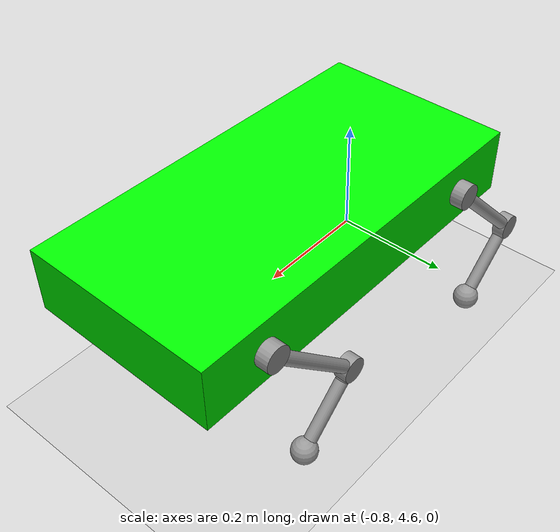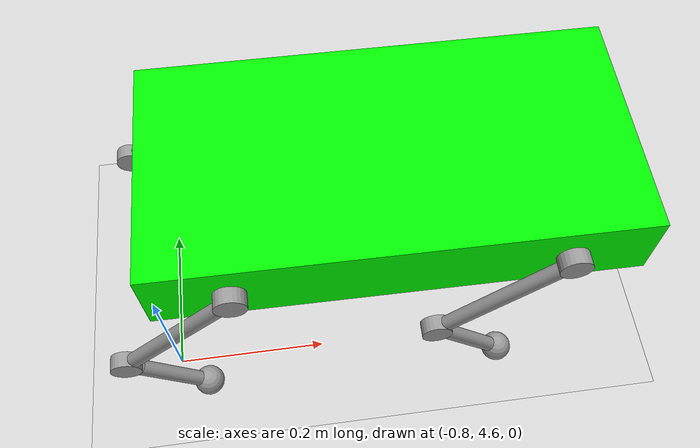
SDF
<sdf version="1.6">
 <world name="default">
  <model name="ground_plane">
   <static>1</static>
   <link name="link">
    <collision name="collision">
     <geometry><plane><normal>0 0 1</normal><size>100 100</size></plane></geometry>
     <surface><friction><ode><mu>100</mu><mu2>50</mu2></ode></friction></surface>
    </collision>
    <visual name="visual">
     <cast_shadows>0</cast_shadows>
     <geometry><plane><normal>0 0 1</normal><size>100 100</size></plane></geometry>
     <material>
      <script><uri>file://media/materials/scripts/gazebo.material</uri><name>Gazebo/Grey</name></script>
     </material>
    </visual>
   </link>
  </model>
  <model name="robodoggi_0">
   <link name="link_0">
    <pose>3.29895 2.116 0.505494 0 -0 0</pose>
    <inertial>
     <mass>1</mass>
     <inertia>
      <ixx>0.166667</ixx>
      <ixy>0</ixy>
      <ixz>0</ixz>
      <iyy>0.166667</iyy>
      <iyz>0</iyz>
      <izz>0.166667</izz>
     </inertia>
    </inertial>
    <visual name="visual">
     <geometry><box><size>0.6 0.3 0.1</size></box></geometry>
     <material>
      <lighting>1</lighting>
      <script><uri>file://media/materials/scripts/gazebo.material</uri><name>Gazebo/Grey</name></script>
      <shader type="pixel"><normal_map>__default__</normal_map></shader>
      <ambient>0 1 0 1</ambient>
      <diffuse>0.7 0.7 0.7 1</diffuse>
      <specular>0.01 0.01 0.01 1</specular>
      <emissive>0 0 0 1</emissive>
     </material>
    </visual>
    <collision name="collision">
     <geometry><box><size>0.6 0.3 0.1</size></box></geometry>
     <surface>
      <friction>
       <ode><mu>1</mu><mu2>1</mu2><fdir1>0 0 0</fdir1><slip1>0</slip1><slip2>0</slip2></ode>
       <torsional>
        <coefficient>1</coefficient>
        <patch_radius>0</patch_radius>
        <surface_radius>0</surface_radius>
        <use_patch_radius>1</use_patch_radius>
        <ode><slip>0</slip></ode>
       </torsional>
      </friction>
      <bounce><restitution_coefficient>0</restitution_coefficient><threshold>1e+06</threshold></bounce>
      <contact>
       <collide_without_contact>0</collide_without_contact>
       <collide_without_contact_bitmask>1</collide_without_contact_bitmask>
       <collide_bitmask>1</collide_bitmask>
       <ode>
        <soft_cfm>0</soft_cfm>
        <soft_erp>0.2</soft_erp>
        <kp>1e+13</kp>
        <kd>1</kd>
        <max_vel>0.01</max_vel>
        <min_depth>0</min_depth>
       </ode>
       <bullet>
        <split_impulse>1</split_impulse>
        <split_impulse_penetration_threshold>-0.01</split_impulse_penetration_threshold>
        <soft_cfm>0</soft_cfm>
        <soft_erp>0.2</soft_erp>
        <kp>1e+13</kp>
        <kd>1</kd>
       </bullet>
      </contact>
     </surface>
    </collision>
   </link>
   <link name="link_1">
    <pose>3.09895 1.956 0.505494 1.5708 -0 0</pose>
    <inertial>
     <mass>1</mass>
     <inertia><ixx>0.145833</ixx><ixy>0</ixy><ixz>0</ixz><iyy>0.145833</iyy><iyz>0</iyz><izz>0.125</izz></inertia>
    </inertial>
    <visual name="visual">
     <geometry><cylinder><radius>0.02</radius><length>0.02</length></cylinder></geometry>
     <material>
      <lighting>1</lighting>
      <script><uri>file://media/materials/scripts/gazebo.material</uri><name>Gazebo/Grey</name></script>
      <shader type="pixel"><normal_map>__default__</normal_map></shader>
      <ambient>0.3 0.3 0.3 1</ambient>
      <diffuse>0.7 0.7 0.7 1</diffuse>
      <specular>0.01 0.01 0.01 1</specular>
      <emissive>0 0 0 1</emissive>
     </material>
    </visual>
    <collision name="collision">
     <geometry><cylinder><radius>0.02</radius><length>0.02</length></cylinder></geometry>
     <surface>
      <friction>
       <ode><mu>1</mu><mu2>1</mu2><fdir1>0 0 0</fdir1><slip1>0</slip1><slip2>0</slip2></ode>
       <torsional>
        <coefficient>1</coefficient>
        <patch_radius>0</patch_radius>
        <surface_radius>0</surface_radius>
        <use_patch_radius>1</use_patch_radius>
        <ode><slip>0</slip></ode>
       </torsional>
      </friction>
      <bounce><restitution_coefficient>0</restitution_coefficient><threshold>1e+06</threshold></bounce>
      <contact>
       <collide_without_contact>0</collide_without_contact>
       <collide_without_contact_bitmask>1</collide_without_contact_bitmask>
       <collide_bitmask>1</collide_bitmask>
       <ode>
        <soft_cfm>0</soft_cfm>
        <soft_erp>0.2</soft_erp>
        <kp>1e+13</kp>
        <kd>1</kd>
        <max_vel>0.01</max_vel>
        <min_depth>0</min_depth>
       </ode>
       <bullet>
        <split_impulse>1</split_impulse>
        <split_impulse_penetration_threshold>-0.01</split_impulse_penetration_threshold>
        <soft_cfm>0</soft_cfm>
        <soft_erp>0.2</soft_erp>
        <kp>1e+13</kp>
        <kd>1</kd>
       </bullet>
      </contact>
     </surface>
    </collision>
   </link>
   <link name="link_1_clone">
    <pose>2.94624 1.956 0.352783 1.5708 -0 0</pose>
    <inertial>
     <mass>1</mass>
     <inertia><ixx>0.145833</ixx><ixy>0</ixy><ixz>0</ixz><iyy>0.145833</iyy><iyz>0</iyz><izz>0.125</izz></inertia>
    </inertial>
    <visual name="visual">
     <geometry><cylinder><radius>0.02</radius><length>0.02</length></cylinder></geometry>
     <material>
      <lighting>1</lighting>
      <script><uri>file://media/materials/scripts/gazebo.material</uri><name>Gazebo/Grey</name></script>
      <shader type="pixel"><normal_map>__default__</normal_map></shader>
      <ambient>0.3 0.3 0.3 1</ambient>
      <diffuse>0.7 0.7 0.7 1</diffuse>
      <specular>0.01 0.01 0.01 1</specular>
      <emissive>0 0 0 1</emissive>
     </material>
    </visual>
    <collision name="collision">
     <geometry><cylinder><radius>0.02</radius><length>0.02</length></cylinder></geometry>
     <surface>
      <friction>
       <ode><mu>1</mu><mu2>1</mu2><fdir1>0 0 0</fdir1><slip1>0</slip1><slip2>0</slip2></ode>
       <torsional>
        <coefficient>1</coefficient>
        <patch_radius>0</patch_radius>
        <surface_radius>0</surface_radius>
        <use_patch_radius>1</use_patch_radius>
        <ode><slip>0</slip></ode>
       </torsional>
      </friction>
      <bounce><restitution_coefficient>0</restitution_coefficient><threshold>1e+06</threshold></bounce>
      <contact>
       <collide_without_contact>0</collide_without_contact>
       <collide_without_contact_bitmask>1</collide_without_contact_bitmask>
       <collide_bitmask>1</collide_bitmask>
       <ode>
        <soft_cfm>0</soft_cfm>
        <soft_erp>0.2</soft_erp>
        <kp>1e+13</kp>
        <kd>1</kd>
        <max_vel>0.01</max_vel>
        <min_depth>0</min_depth>
       </ode>
       <bullet>
        <split_impulse>1</split_impulse>
        <split_impulse_penetration_threshold>-0.01</split_impulse_penetration_threshold>
        <soft_cfm>0</soft_cfm>
        <soft_erp>0.2</soft_erp>
        <kp>1e+13</kp>
        <kd>1</kd>
       </bullet>
      </contact>
     </surface>
    </collision>
   </link>
   <link name="link_1_clone_0">
    <pose>3.49895 1.956 0.505494 1.5708 -0 0</pose>
    <inertial>
     <mass>1</mass>
     <inertia><ixx>0.145833</ixx><ixy>0</ixy><ixz>0</ixz><iyy>0.145833</iyy><iyz>0</iyz><izz>0.125</izz></inertia>
    </inertial>
    <visual name="visual">
     <geometry><cylinder><radius>0.02</radius><length>0.02</length></cylinder></geometry>
     <material>
      <lighting>1</lighting>
      <script><uri>file://media/materials/scripts/gazebo.material</uri><name>Gazebo/Grey</name></script>
      <shader type="pixel"><normal_map>__default__</normal_map></shader>
      <ambient>0.3 0.3 0.3 1</ambient>
      <diffuse>0.7 0.7 0.7 1</diffuse>
      <specular>0.01 0.01 0.01 1</specular>
      <emissive>0 0 0 1</emissive>
     </material>
    </visual>
    <collision name="collision">
     <geometry><cylinder><radius>0.02</radius><length>0.02</length></cylinder></geometry>
     <surface>
      <friction>
       <ode><mu>1</mu><mu2>1</mu2><fdir1>0 0 0</fdir1><slip1>0</slip1><slip2>0</slip2></ode>
       <torsional>
        <coefficient>1</coefficient>
        <patch_radius>0</patch_radius>
        <surface_radius>0</surface_radius>
        <use_patch_radius>1</use_patch_radius>
        <ode><slip>0</slip></ode>
       </torsional>
      </friction>
      <bounce><restitution_coefficient>0</restitution_coefficient><threshold>1e+06</threshold></bounce>
      <contact>
       <collide_without_contact>0</collide_without_contact>
       <collide_without_contact_bitmask>1</collide_without_contact_bitmask>
       <collide_bitmask>1</collide_bitmask>
       <ode>
        <soft_cfm>0</soft_cfm>
        <soft_erp>0.2</soft_erp>
        <kp>1e+13</kp>
        <kd>1</kd>
        <max_vel>0.01</max_vel>
        <min_depth>0</min_depth>
       </ode>
       <bullet>
        <split_impulse>1</split_impulse>
        <split_impulse_penetration_threshold>-0.01</split_impulse_penetration_threshold>
        <soft_cfm>0</soft_cfm>
        <soft_erp>0.2</soft_erp>
        <kp>1e+13</kp>
        <kd>1</kd>
       </bullet>
      </contact>
     </surface>
    </collision>
   </link>
   <link name="link_1_clone_0_clone">
    <pose>3.49895 2.27601 0.505494 1.5708 -0 0</pose>
    <inertial>
     <mass>1</mass>
     <inertia><ixx>0.145833</ixx><ixy>0</ixy><ixz>0</ixz><iyy>0.145833</iyy><iyz>0</iyz><izz>0.125</izz></inertia>
    </inertial>
    <visual name="visual">
     <geometry><cylinder><radius>0.02</radius><length>0.02</length></cylinder></geometry>
     <material>
      <lighting>1</lighting>
      <script><uri>file://media/materials/scripts/gazebo.material</uri><name>Gazebo/Grey</name></script>
      <shader type="pixel"><normal_map>__default__</normal_map></shader>
      <ambient>0.3 0.3 0.3 1</ambient>
      <diffuse>0.7 0.7 0.7 1</diffuse>
      <specular>0.01 0.01 0.01 1</specular>
      <emissive>0 0 0 1</emissive>
     </material>
    </visual>
    <collision name="collision">
     <geometry><cylinder><radius>0.02</radius><length>0.02</length></cylinder></geometry>
     <surface>
      <friction>
       <ode><mu>1</mu><mu2>1</mu2><fdir1>0 0 0</fdir1><slip1>0</slip1><slip2>0</slip2></ode>
       <torsional>
        <coefficient>1</coefficient>
        <patch_radius>0</patch_radius>
        <surface_radius>0</surface_radius>
        <use_patch_radius>1</use_patch_radius>
        <ode><slip>0</slip></ode>
       </torsional>
      </friction>
      <bounce><restitution_coefficient>0</restitution_coefficient><threshold>1e+06</threshold></bounce>
      <contact>
       <collide_without_contact>0</collide_without_contact>
       <collide_without_contact_bitmask>1</collide_without_contact_bitmask>
       <collide_bitmask>1</collide_bitmask>
       <ode>
        <soft_cfm>0</soft_cfm>
        <soft_erp>0.2</soft_erp>
        <kp>1e+13</kp>
        <kd>1</kd>
        <max_vel>0.01</max_vel>
        <min_depth>0</min_depth>
       </ode>
       <bullet>
        <split_impulse>1</split_impulse>
        <split_impulse_penetration_threshold>-0.01</split_impulse_penetration_threshold>
        <soft_cfm>0</soft_cfm>
        <soft_erp>0.2</soft_erp>
        <kp>1e+13</kp>
        <kd>1</kd>
       </bullet>
      </contact>
     </surface>
    </collision>
   </link>
   <link name="link_1_clone_0_clone_clone">
    <pose>3.34824 2.27601 0.354783 1.5708 -0 0</pose>
    <inertial>
     <mass>1</mass>
     <inertia><ixx>0.145833</ixx><ixy>0</ixy><ixz>0</ixz><iyy>0.145833</iyy><iyz>0</iyz><izz>0.125</izz></inertia>
    </inertial>
    <visual name="visual">
     <geometry><cylinder><radius>0.02</radius><length>0.02</length></cylinder></geometry>
     <material>
      <lighting>1</lighting>
      <script><uri>file://media/materials/scripts/gazebo.material</uri><name>Gazebo/Grey</name></script>
      <shader type="pixel"><normal_map>__default__</normal_map></shader>
      <ambient>0.3 0.3 0.3 1</ambient>
      <diffuse>0.7 0.7 0.7 1</diffuse>
      <specular>0.01 0.01 0.01 1</specular>
      <emissive>0 0 0 1</emissive>
     </material>
    </visual>
    <collision name="collision">
     <geometry><cylinder><radius>0.02</radius><length>0.02</length></cylinder></geometry>
     <surface>
      <friction>
       <ode><mu>1</mu><mu2>1</mu2><fdir1>0 0 0</fdir1><slip1>0</slip1><slip2>0</slip2></ode>
       <torsional>
        <coefficient>1</coefficient>
        <patch_radius>0</patch_radius>
        <surface_radius>0</surface_radius>
        <use_patch_radius>1</use_patch_radius>
        <ode><slip>0</slip></ode>
       </torsional>
      </friction>
      <bounce><restitution_coefficient>0</restitution_coefficient><threshold>1e+06</threshold></bounce>
      <contact>
       <collide_without_contact>0</collide_without_contact>
       <collide_without_contact_bitmask>1</collide_without_contact_bitmask>
       <collide_bitmask>1</collide_bitmask>
       <ode>
        <soft_cfm>0</soft_cfm>
        <soft_erp>0.2</soft_erp>
        <kp>1e+13</kp>
        <kd>1</kd>
        <max_vel>0.01</max_vel>
        <min_depth>0</min_depth>
       </ode>
       <bullet>
        <split_impulse>1</split_impulse>
        <split_impulse_penetration_threshold>-0.01</split_impulse_penetration_threshold>
        <soft_cfm>0</soft_cfm>
        <soft_erp>0.2</soft_erp>
        <kp>1e+13</kp>
        <kd>1</kd>
       </bullet>
      </contact>
     </surface>
    </collision>
   </link>
   <link name="link_1_clone_0_clone_clone_0">
    <pose>3.09895 2.27601 0.505494 1.5708 -0 0</pose>
    <inertial>
     <mass>1</mass>
     <inertia><ixx>0.145833</ixx><ixy>0</ixy><ixz>0</ixz><iyy>0.145833</iyy><iyz>0</iyz><izz>0.125</izz></inertia>
    </inertial>
    <visual name="visual">
     <geometry><cylinder><radius>0.02</radius><length>0.02</length></cylinder></geometry>
     <material>
      <lighting>1</lighting>
      <script><uri>file://media/materials/scripts/gazebo.material</uri><name>Gazebo/Grey</name></script>
      <shader type="pixel"><normal_map>__default__</normal_map></shader>
      <ambient>0.3 0.3 0.3 1</ambient>
      <diffuse>0.7 0.7 0.7 1</diffuse>
      <specular>0.01 0.01 0.01 1</specular>
      <emissive>0 0 0 1</emissive>
     </material>
    </visual>
    <collision name="collision">
     <geometry><cylinder><radius>0.02</radius><length>0.02</length></cylinder></geometry>
     <surface>
      <friction>
       <ode><mu>1</mu><mu2>1</mu2><fdir1>0 0 0</fdir1><slip1>0</slip1><slip2>0</slip2></ode>
       <torsional>
        <coefficient>1</coefficient>
        <patch_radius>0</patch_radius>
        <surface_radius>0</surface_radius>
        <use_patch_radius>1</use_patch_radius>
        <ode><slip>0</slip></ode>
       </torsional>
      </friction>
      <bounce><restitution_coefficient>0</restitution_coefficient><threshold>1e+06</threshold></bounce>
      <contact>
       <collide_without_contact>0</collide_without_contact>
       <collide_without_contact_bitmask>1</collide_without_contact_bitmask>
       <collide_bitmask>1</collide_bitmask>
       <ode>
        <soft_cfm>0</soft_cfm>
        <soft_erp>0.2</soft_erp>
        <kp>1e+13</kp>
        <kd>1</kd>
        <max_vel>0.01</max_vel>
        <min_depth>0</min_depth>
       </ode>
       <bullet>
        <split_impulse>1</split_impulse>
        <split_impulse_penetration_threshold>-0.01</split_impulse_penetration_threshold>
        <soft_cfm>0</soft_cfm>
        <soft_erp>0.2</soft_erp>
        <kp>1e+13</kp>
        <kd>1</kd>
       </bullet>
      </contact>
     </surface>
    </collision>
   </link>
   <link name="link_1_clone_0_clone_clone_clone">
    <pose>2.94824 2.27601 0.354783 1.5708 -0 0</pose>
    <inertial>
     <mass>1</mass>
     <inertia><ixx>0.145833</ixx><ixy>0</ixy><ixz>0</ixz><iyy>0.145833</iyy><iyz>0</iyz><izz>0.125</izz></inertia>
    </inertial>
    <visual name="visual">
     <geometry><cylinder><radius>0.02</radius><length>0.02</length></cylinder></geometry>
     <material>
      <lighting>1</lighting>
      <script><uri>file://media/materials/scripts/gazebo.material</uri><name>Gazebo/Grey</name></script>
      <shader type="pixel"><normal_map>__default__</normal_map></shader>
      <ambient>0.3 0.3 0.3 1</ambient>
      <diffuse>0.7 0.7 0.7 1</diffuse>
      <specular>0.01 0.01 0.01 1</specular>
      <emissive>0 0 0 1</emissive>
     </material>
    </visual>
    <collision name="collision">
     <geometry><cylinder><radius>0.02</radius><length>0.02</length></cylinder></geometry>
     <surface>
      <friction>
       <ode><mu>1</mu><mu2>1</mu2><fdir1>0 0 0</fdir1><slip1>0</slip1><slip2>0</slip2></ode>
       <torsional>
        <coefficient>1</coefficient>
        <patch_radius>0</patch_radius>
        <surface_radius>0</surface_radius>
        <use_patch_radius>1</use_patch_radius>
        <ode><slip>0</slip></ode>
       </torsional>
      </friction>
      <bounce><restitution_coefficient>0</restitution_coefficient><threshold>1e+06</threshold></bounce>
      <contact>
       <collide_without_contact>0</collide_without_contact>
       <collide_without_contact_bitmask>1</collide_without_contact_bitmask>
       <collide_bitmask>1</collide_bitmask>
       <ode>
        <soft_cfm>0</soft_cfm>
        <soft_erp>0.2</soft_erp>
        <kp>1e+13</kp>
        <kd>1</kd>
        <max_vel>0.01</max_vel>
        <min_depth>0</min_depth>
       </ode>
       <bullet>
        <split_impulse>1</split_impulse>
        <split_impulse_penetration_threshold>-0.01</split_impulse_penetration_threshold>
        <soft_cfm>0</soft_cfm>
        <soft_erp>0.2</soft_erp>
        <kp>1e+13</kp>
        <kd>1</kd>
       </bullet>
      </contact>
     </surface>
    </collision>
   </link>
   <link name="link_1_clone_clone">
    <pose>3.34824 1.956 0.354783 1.5708 -0 0</pose>
    <inertial>
     <mass>1</mass>
     <inertia><ixx>0.145833</ixx><ixy>0</ixy><ixz>0</ixz><iyy>0.145833</iyy><iyz>0</iyz><izz>0.125</izz></inertia>
    </inertial>
    <visual name="visual">
     <geometry><cylinder><radius>0.02</radius><length>0.02</length></cylinder></geometry>
     <material>
      <lighting>1</lighting>
      <script><uri>file://media/materials/scripts/gazebo.material</uri><name>Gazebo/Grey</name></script>
      <shader type="pixel"><normal_map>__default__</normal_map></shader>
      <ambient>0.3 0.3 0.3 1</ambient>
      <diffuse>0.7 0.7 0.7 1</diffuse>
      <specular>0.01 0.01 0.01 1</specular>
      <emissive>0 0 0 1</emissive>
     </material>
    </visual>
    <collision name="collision">
     <geometry><cylinder><radius>0.02</radius><length>0.02</length></cylinder></geometry>
     <surface>
      <friction>
       <ode><mu>1</mu><mu2>1</mu2><fdir1>0 0 0</fdir1><slip1>0</slip1><slip2>0</slip2></ode>
       <torsional>
        <coefficient>1</coefficient>
        <patch_radius>0</patch_radius>
        <surface_radius>0</surface_radius>
        <use_patch_radius>1</use_patch_radius>
        <ode><slip>0</slip></ode>
       </torsional>
      </friction>
      <bounce><restitution_coefficient>0</restitution_coefficient><threshold>1e+06</threshold></bounce>
      <contact>
       <collide_without_contact>0</collide_without_contact>
       <collide_without_contact_bitmask>1</collide_without_contact_bitmask>
       <collide_bitmask>1</collide_bitmask>
       <ode>
        <soft_cfm>0</soft_cfm>
        <soft_erp>0.2</soft_erp>
        <kp>1e+13</kp>
        <kd>1</kd>
        <max_vel>0.01</max_vel>
        <min_depth>0</min_depth>
       </ode>
       <bullet>
        <split_impulse>1</split_impulse>
        <split_impulse_penetration_threshold>-0.01</split_impulse_penetration_threshold>
        <soft_cfm>0</soft_cfm>
        <soft_erp>0.2</soft_erp>
        <kp>1e+13</kp>
        <kd>1</kd>
       </bullet>
      </contact>
     </surface>
    </collision>
   </link>
   <link name="link_2">
    <pose>3.01695 1.956 0.423494 0 0.785398 -1e-06</pose>
    <inertial>
     <mass>1</mass>
     <inertia><ixx>0.145833</ixx><ixy>0</ixy><ixz>0</ixz><iyy>0.145833</iyy><iyz>0</iyz><izz>0.125</izz></inertia>
    </inertial>
    <visual name="visual">
     <geometry><cylinder><radius>0.01</radius><length>0.2</length></cylinder></geometry>
     <material>
      <lighting>1</lighting>
      <script><uri>file://media/materials/scripts/gazebo.material</uri><name>Gazebo/Grey</name></script>
      <shader type="pixel"><normal_map>__default__</normal_map></shader>
      <ambient>0.3 0.3 0.3 1</ambient>
      <diffuse>0.7 0.7 0.7 1</diffuse>
      <specular>0.01 0.01 0.01 1</specular>
      <emissive>0 0 0 1</emissive>
     </material>
    </visual>
    <collision name="collision">
     <geometry><cylinder><radius>0.01</radius><length>0.2</length></cylinder></geometry>
     <surface>
      <friction>
       <ode><mu>1</mu><mu2>1</mu2><fdir1>0 0 0</fdir1><slip1>0</slip1><slip2>0</slip2></ode>
       <torsional>
        <coefficient>1</coefficient>
        <patch_radius>0</patch_radius>
        <surface_radius>0</surface_radius>
        <use_patch_radius>1</use_patch_radius>
        <ode><slip>0</slip></ode>
       </torsional>
      </friction>
      <bounce><restitution_coefficient>0</restitution_coefficient><threshold>1e+06</threshold></bounce>
      <contact>
       <collide_without_contact>0</collide_without_contact>
       <collide_without_contact_bitmask>1</collide_without_contact_bitmask>
       <collide_bitmask>1</collide_bitmask>
       <ode>
        <soft_cfm>0</soft_cfm>
        <soft_erp>0.2</soft_erp>
        <kp>1e+13</kp>
        <kd>1</kd>
        <max_vel>0.01</max_vel>
        <min_depth>0</min_depth>
       </ode>
       <bullet>
        <split_impulse>1</split_impulse>
        <split_impulse_penetration_threshold>-0.01</split_impulse_penetration_threshold>
        <soft_cfm>0</soft_cfm>
        <soft_erp>0.2</soft_erp>
        <kp>1e+13</kp>
        <kd>1</kd>
       </bullet>
      </contact>
     </surface>
    </collision>
   </link>
   <link name="link_2_clone">
    <pose>2.99624 1.956 0.302783 -1e-06 -0.785398 1e-06</pose>
    <inertial>
     <mass>1</mass>
     <inertia><ixx>0.145833</ixx><ixy>0</ixy><ixz>0</ixz><iyy>0.145833</iyy><iyz>0</iyz><izz>0.125</izz></inertia>
    </inertial>
    <visual name="visual">
     <geometry><cylinder><radius>0.01</radius><length>0.1</length></cylinder></geometry>
     <material>
      <lighting>1</lighting>
      <script><uri>file://media/materials/scripts/gazebo.material</uri><name>Gazebo/Grey</name></script>
      <shader type="pixel"><normal_map>__default__</normal_map></shader>
      <ambient>0.3 0.3 0.3 1</ambient>
      <diffuse>0.7 0.7 0.7 1</diffuse>
      <specular>0.01 0.01 0.01 1</specular>
      <emissive>0 0 0 1</emissive>
     </material>
    </visual>
    <collision name="collision">
     <geometry><cylinder><radius>0.01</radius><length>0.1</length></cylinder></geometry>
     <surface>
      <friction>
       <ode><mu>1</mu><mu2>1</mu2><fdir1>0 0 0</fdir1><slip1>0</slip1><slip2>0</slip2></ode>
       <torsional>
        <coefficient>1</coefficient>
        <patch_radius>0</patch_radius>
        <surface_radius>0</surface_radius>
        <use_patch_radius>1</use_patch_radius>
        <ode><slip>0</slip></ode>
       </torsional>
      </friction>
      <bounce><restitution_coefficient>0</restitution_coefficient><threshold>1e+06</threshold></bounce>
      <contact>
       <collide_without_contact>0</collide_without_contact>
       <collide_without_contact_bitmask>1</collide_without_contact_bitmask>
       <collide_bitmask>1</collide_bitmask>
       <ode>
        <soft_cfm>0</soft_cfm>
        <soft_erp>0.2</soft_erp>
        <kp>1e+13</kp>
        <kd>1</kd>
        <max_vel>0.01</max_vel>
        <min_depth>0</min_depth>
       </ode>
       <bullet>
        <split_impulse>1</split_impulse>
        <split_impulse_penetration_threshold>-0.01</split_impulse_penetration_threshold>
        <soft_cfm>0</soft_cfm>
        <soft_erp>0.2</soft_erp>
        <kp>1e+13</kp>
        <kd>1</kd>
       </bullet>
      </contact>
     </surface>
    </collision>
   </link>
   <link name="link_2_clone_0">
    <pose>3.41895 1.956 0.425494 1e-06 0.785398 -1e-06</pose>
    <inertial>
     <mass>1</mass>
     <inertia><ixx>0.145833</ixx><ixy>0</ixy><ixz>0</ixz><iyy>0.145833</iyy><iyz>0</iyz><izz>0.125</izz></inertia>
    </inertial>
    <visual name="visual">
     <geometry><cylinder><radius>0.01</radius><length>0.2</length></cylinder></geometry>
     <material>
      <lighting>1</lighting>
      <script><uri>file://media/materials/scripts/gazebo.material</uri><name>Gazebo/Grey</name></script>
      <shader type="pixel"><normal_map>__default__</normal_map></shader>
      <ambient>0.3 0.3 0.3 1</ambient>
      <diffuse>0.7 0.7 0.7 1</diffuse>
      <specular>0.01 0.01 0.01 1</specular>
      <emissive>0 0 0 1</emissive>
     </material>
    </visual>
    <collision name="collision">
     <geometry><cylinder><radius>0.01</radius><length>0.2</length></cylinder></geometry>
     <surface>
      <friction>
       <ode><mu>1</mu><mu2>1</mu2><fdir1>0 0 0</fdir1><slip1>0</slip1><slip2>0</slip2></ode>
       <torsional>
        <coefficient>1</coefficient>
        <patch_radius>0</patch_radius>
        <surface_radius>0</surface_radius>
        <use_patch_radius>1</use_patch_radius>
        <ode><slip>0</slip></ode>
       </torsional>
      </friction>
      <bounce><restitution_coefficient>0</restitution_coefficient><threshold>1e+06</threshold></bounce>
      <contact>
       <collide_without_contact>0</collide_without_contact>
       <collide_without_contact_bitmask>1</collide_without_contact_bitmask>
       <collide_bitmask>1</collide_bitmask>
       <ode>
        <soft_cfm>0</soft_cfm>
        <soft_erp>0.2</soft_erp>
        <kp>1e+13</kp>
        <kd>1</kd>
        <max_vel>0.01</max_vel>
        <min_depth>0</min_depth>
       </ode>
       <bullet>
        <split_impulse>1</split_impulse>
        <split_impulse_penetration_threshold>-0.01</split_impulse_penetration_threshold>
        <soft_cfm>0</soft_cfm>
        <soft_erp>0.2</soft_erp>
        <kp>1e+13</kp>
        <kd>1</kd>
       </bullet>
      </contact>
     </surface>
    </collision>
   </link>
   <link name="link_2_clone_0_clone">
    <pose>3.41895 2.27601 0.425494 2e-06 0.785398 -1e-06</pose>
    <inertial>
     <mass>1</mass>
     <inertia><ixx>0.145833</ixx><ixy>0</ixy><ixz>0</ixz><iyy>0.145833</iyy><iyz>0</iyz><izz>0.125</izz></inertia>
    </inertial>
    <visual name="visual">
     <geometry><cylinder><radius>0.01</radius><length>0.2</length></cylinder></geometry>
     <material>
      <lighting>1</lighting>
      <script><uri>file://media/materials/scripts/gazebo.material</uri><name>Gazebo/Grey</name></script>
      <shader type="pixel"><normal_map>__default__</normal_map></shader>
      <ambient>0.3 0.3 0.3 1</ambient>
      <diffuse>0.7 0.7 0.7 1</diffuse>
      <specular>0.01 0.01 0.01 1</specular>
      <emissive>0 0 0 1</emissive>
     </material>
    </visual>
    <collision name="collision">
     <geometry><cylinder><radius>0.01</radius><length>0.2</length></cylinder></geometry>
     <surface>
      <friction>
       <ode><mu>1</mu><mu2>1</mu2><fdir1>0 0 0</fdir1><slip1>0</slip1><slip2>0</slip2></ode>
       <torsional>
        <coefficient>1</coefficient>
        <patch_radius>0</patch_radius>
        <surface_radius>0</surface_radius>
        <use_patch_radius>1</use_patch_radius>
        <ode><slip>0</slip></ode>
       </torsional>
      </friction>
      <bounce><restitution_coefficient>0</restitution_coefficient><threshold>1e+06</threshold></bounce>
      <contact>
       <collide_without_contact>0</collide_without_contact>
       <collide_without_contact_bitmask>1</collide_without_contact_bitmask>
       <collide_bitmask>1</collide_bitmask>
       <ode>
        <soft_cfm>0</soft_cfm>
        <soft_erp>0.2</soft_erp>
        <kp>1e+13</kp>
        <kd>1</kd>
        <max_vel>0.01</max_vel>
        <min_depth>0</min_depth>
       </ode>
       <bullet>
        <split_impulse>1</split_impulse>
        <split_impulse_penetration_threshold>-0.01</split_impulse_penetration_threshold>
        <soft_cfm>0</soft_cfm>
        <soft_erp>0.2</soft_erp>
        <kp>1e+13</kp>
        <kd>1</kd>
       </bullet>
      </contact>
     </surface>
    </collision>
   </link>
   <link name="link_2_clone_0_clone_clone">
    <pose>3.01895 2.27601 0.425494 3e-06 0.785398 -1e-06</pose>
    <inertial>
     <mass>1</mass>
     <inertia><ixx>0.145833</ixx><ixy>0</ixy><ixz>0</ixz><iyy>0.145833</iyy><iyz>0</iyz><izz>0.125</izz></inertia>
    </inertial>
    <visual name="visual">
     <geometry><cylinder><radius>0.01</radius><length>0.2</length></cylinder></geometry>
     <material>
      <lighting>1</lighting>
      <script><uri>file://media/materials/scripts/gazebo.material</uri><name>Gazebo/Grey</name></script>
      <shader type="pixel"><normal_map>__default__</normal_map></shader>
      <ambient>0.3 0.3 0.3 1</ambient>
      <diffuse>0.7 0.7 0.7 1</diffuse>
      <specular>0.01 0.01 0.01 1</specular>
      <emissive>0 0 0 1</emissive>
     </material>
    </visual>
    <collision name="collision">
     <geometry><cylinder><radius>0.01</radius><length>0.2</length></cylinder></geometry>
     <surface>
      <friction>
       <ode><mu>1</mu><mu2>1</mu2><fdir1>0 0 0</fdir1><slip1>0</slip1><slip2>0</slip2></ode>
       <torsional>
        <coefficient>1</coefficient>
        <patch_radius>0</patch_radius>
        <surface_radius>0</surface_radius>
        <use_patch_radius>1</use_patch_radius>
        <ode><slip>0</slip></ode>
       </torsional>
      </friction>
      <bounce><restitution_coefficient>0</restitution_coefficient><threshold>1e+06</threshold></bounce>
      <contact>
       <collide_without_contact>0</collide_without_contact>
       <collide_without_contact_bitmask>1</collide_without_contact_bitmask>
       <collide_bitmask>1</collide_bitmask>
       <ode>
        <soft_cfm>0</soft_cfm>
        <soft_erp>0.2</soft_erp>
        <kp>1e+13</kp>
        <kd>1</kd>
        <max_vel>0.01</max_vel>
        <min_depth>0</min_depth>
       </ode>
       <bullet>
        <split_impulse>1</split_impulse>
        <split_impulse_penetration_threshold>-0.01</split_impulse_penetration_threshold>
        <soft_cfm>0</soft_cfm>
        <soft_erp>0.2</soft_erp>
        <kp>1e+13</kp>
        <kd>1</kd>
       </bullet>
      </contact>
     </surface>
    </collision>
   </link>
   <link name="link_2_clone_clone">
    <pose>3.39824 1.956 0.304783 -1e-06 -0.785398 2e-06</pose>
    <inertial>
     <mass>1</mass>
     <inertia><ixx>0.145833</ixx><ixy>0</ixy><ixz>0</ixz><iyy>0.145833</iyy><iyz>0</iyz><izz>0.125</izz></inertia>
    </inertial>
    <visual name="visual">
     <geometry><cylinder><radius>0.01</radius><length>0.1</length></cylinder></geometry>
     <material>
      <lighting>1</lighting>
      <script><uri>file://media/materials/scripts/gazebo.material</uri><name>Gazebo/Grey</name></script>
      <shader type="pixel"><normal_map>__default__</normal_map></shader>
      <ambient>0.3 0.3 0.3 1</ambient>
      <diffuse>0.7 0.7 0.7 1</diffuse>
      <specular>0.01 0.01 0.01 1</specular>
      <emissive>0 0 0 1</emissive>
     </material>
    </visual>
    <collision name="collision">
     <geometry><cylinder><radius>0.01</radius><length>0.1</length></cylinder></geometry>
     <surface>
      <friction>
       <ode><mu>1</mu><mu2>1</mu2><fdir1>0 0 0</fdir1><slip1>0</slip1><slip2>0</slip2></ode>
       <torsional>
        <coefficient>1</coefficient>
        <patch_radius>0</patch_radius>
        <surface_radius>0</surface_radius>
        <use_patch_radius>1</use_patch_radius>
        <ode><slip>0</slip></ode>
       </torsional>
      </friction>
      <bounce><restitution_coefficient>0</restitution_coefficient><threshold>1e+06</threshold></bounce>
      <contact>
       <collide_without_contact>0</collide_without_contact>
       <collide_without_contact_bitmask>1</collide_without_contact_bitmask>
       <collide_bitmask>1</collide_bitmask>
       <ode>
        <soft_cfm>0</soft_cfm>
        <soft_erp>0.2</soft_erp>
        <kp>1e+13</kp>
        <kd>1</kd>
        <max_vel>0.01</max_vel>
        <min_depth>0</min_depth>
       </ode>
       <bullet>
        <split_impulse>1</split_impulse>
        <split_impulse_penetration_threshold>-0.01</split_impulse_penetration_threshold>
        <soft_cfm>0</soft_cfm>
        <soft_erp>0.2</soft_erp>
        <kp>1e+13</kp>
        <kd>1</kd>
       </bullet>
      </contact>
     </surface>
    </collision>
   </link>
   <link name="link_2_clone_clone_clone">
    <pose>3.39824 2.27601 0.304783 -1e-06 -0.785398 2e-06</pose>
    <inertial>
     <mass>1</mass>
     <inertia><ixx>0.145833</ixx><ixy>0</ixy><ixz>0</ixz><iyy>0.145833</iyy><iyz>0</iyz><izz>0.125</izz></inertia>
    </inertial>
    <visual name="visual">
     <geometry><cylinder><radius>0.01</radius><length>0.1</length></cylinder></geometry>
     <material>
      <lighting>1</lighting>
      <script><uri>file://media/materials/scripts/gazebo.material</uri><name>Gazebo/Grey</name></script>
      <shader type="pixel"><normal_map>__default__</normal_map></shader>
      <ambient>0.3 0.3 0.3 1</ambient>
      <diffuse>0.7 0.7 0.7 1</diffuse>
      <specular>0.01 0.01 0.01 1</specular>
      <emissive>0 0 0 1</emissive>
     </material>
    </visual>
    <collision name="collision">
     <geometry><cylinder><radius>0.01</radius><length>0.1</length></cylinder></geometry>
     <surface>
      <friction>
       <ode><mu>1</mu><mu2>1</mu2><fdir1>0 0 0</fdir1><slip1>0</slip1><slip2>0</slip2></ode>
       <torsional>
        <coefficient>1</coefficient>
        <patch_radius>0</patch_radius>
        <surface_radius>0</surface_radius>
        <use_patch_radius>1</use_patch_radius>
        <ode><slip>0</slip></ode>
       </torsional>
      </friction>
      <bounce><restitution_coefficient>0</restitution_coefficient><threshold>1e+06</threshold></bounce>
      <contact>
       <collide_without_contact>0</collide_without_contact>
       <collide_without_contact_bitmask>1</collide_without_contact_bitmask>
       <collide_bitmask>1</collide_bitmask>
       <ode>
        <soft_cfm>0</soft_cfm>
        <soft_erp>0.2</soft_erp>
        <kp>1e+13</kp>
        <kd>1</kd>
        <max_vel>0.01</max_vel>
        <min_depth>0</min_depth>
       </ode>
       <bullet>
        <split_impulse>1</split_impulse>
        <split_impulse_penetration_threshold>-0.01</split_impulse_penetration_threshold>
        <soft_cfm>0</soft_cfm>
        <soft_erp>0.2</soft_erp>
        <kp>1e+13</kp>
        <kd>1</kd>
       </bullet>
      </contact>
     </surface>
    </collision>
   </link>
   <link name="link_2_clone_clone_clone_clone">
    <pose>2.99824 2.27601 0.304783 -1e-06 -0.785398 2e-06</pose>
    <inertial>
     <mass>1</mass>
     <inertia><ixx>0.145833</ixx><ixy>0</ixy><ixz>0</ixz><iyy>0.145833</iyy><iyz>0</iyz><izz>0.125</izz></inertia>
    </inertial>
    <visual name="visual">
     <geometry><cylinder><radius>0.01</radius><length>0.1</length></cylinder></geometry>
     <material>
      <lighting>1</lighting>
      <script><uri>file://media/materials/scripts/gazebo.material</uri><name>Gazebo/Grey</name></script>
      <shader type="pixel"><normal_map>__default__</normal_map></shader>
      <ambient>0.3 0.3 0.3 1</ambient>
      <diffuse>0.7 0.7 0.7 1</diffuse>
      <specular>0.01 0.01 0.01 1</specular>
      <emissive>0 0 0 1</emissive>
     </material>
    </visual>
    <collision name="collision">
     <geometry><cylinder><radius>0.01</radius><length>0.1</length></cylinder></geometry>
     <surface>
      <friction>
       <ode><mu>1</mu><mu2>1</mu2><fdir1>0 0 0</fdir1><slip1>0</slip1><slip2>0</slip2></ode>
       <torsional>
        <coefficient>1</coefficient>
        <patch_radius>0</patch_radius>
        <surface_radius>0</surface_radius>
        <use_patch_radius>1</use_patch_radius>
        <ode><slip>0</slip></ode>
       </torsional>
      </friction>
      <bounce><restitution_coefficient>0</restitution_coefficient><threshold>1e+06</threshold></bounce>
      <contact>
       <collide_without_contact>0</collide_without_contact>
       <collide_without_contact_bitmask>1</collide_without_contact_bitmask>
       <collide_bitmask>1</collide_bitmask>
       <ode>
        <soft_cfm>0</soft_cfm>
        <soft_erp>0.2</soft_erp>
        <kp>1e+13</kp>
        <kd>1</kd>
        <max_vel>0.01</max_vel>
        <min_depth>0</min_depth>
       </ode>
       <bullet>
        <split_impulse>1</split_impulse>
        <split_impulse_penetration_threshold>-0.01</split_impulse_penetration_threshold>
        <soft_cfm>0</soft_cfm>
        <soft_erp>0.2</soft_erp>
        <kp>1e+13</kp>
        <kd>1</kd>
       </bullet>
      </contact>
     </surface>
    </collision>
   </link>
   <link name="link_3">
    <pose>3.03866 1.956 0.260357 0 -0 0</pose>
    <inertial>
     <mass>1</mass>
     <inertia><ixx>0.1</ixx><ixy>0</ixy><ixz>0</ixz><iyy>0.1</iyy><iyz>0</iyz><izz>0.1</izz></inertia>
    </inertial>
    <visual name="visual">
     <geometry><sphere><radius>0.02</radius></sphere></geometry>
     <material>
      <lighting>1</lighting>
      <script><uri>file://media/materials/scripts/gazebo.material</uri><name>Gazebo/Grey</name></script>
      <shader type="pixel"><normal_map>__default__</normal_map></shader>
      <ambient>0.3 0.3 0.3 1</ambient>
      <diffuse>0.7 0.7 0.7 1</diffuse>
      <specular>0.01 0.01 0.01 1</specular>
      <emissive>0 0 0 1</emissive>
     </material>
    </visual>
    <collision name="collision">
     <geometry><sphere><radius>0.02</radius></sphere></geometry>
     <surface>
      <friction>
       <ode><mu>1</mu><mu2>1</mu2><fdir1>0 0 0</fdir1><slip1>0</slip1><slip2>0</slip2></ode>
       <torsional>
        <coefficient>1</coefficient>
        <patch_radius>0</patch_radius>
        <surface_radius>0</surface_radius>
        <use_patch_radius>1</use_patch_radius>
        <ode><slip>0</slip></ode>
       </torsional>
      </friction>
      <bounce><restitution_coefficient>0</restitution_coefficient><threshold>1e+06</threshold></bounce>
      <contact>
       <collide_without_contact>0</collide_without_contact>
       <collide_without_contact_bitmask>1</collide_without_contact_bitmask>
       <collide_bitmask>1</collide_bitmask>
       <ode>
        <soft_cfm>0</soft_cfm>
        <soft_erp>0.2</soft_erp>
        <kp>1e+13</kp>
        <kd>1</kd>
        <max_vel>0.01</max_vel>
        <min_depth>0</min_depth>
       </ode>
       <bullet>
        <split_impulse>1</split_impulse>
        <split_impulse_penetration_threshold>-0.01</split_impulse_penetration_threshold>
        <soft_cfm>0</soft_cfm>
        <soft_erp>0.2</soft_erp>
        <kp>1e+13</kp>
        <kd>1</kd>
       </bullet>
      </contact>
     </surface>
    </collision>
   </link>
   <link name="link_3_clone">
    <pose>3.44067 1.956 0.262357 0 -0 0</pose>
    <inertial>
     <mass>1</mass>
     <inertia><ixx>0.1</ixx><ixy>0</ixy><ixz>0</ixz><iyy>0.1</iyy><iyz>0</iyz><izz>0.1</izz></inertia>
    </inertial>
    <visual name="visual">
     <geometry><sphere><radius>0.02</radius></sphere></geometry>
     <material>
      <lighting>1</lighting>
      <script><uri>file://media/materials/scripts/gazebo.material</uri><name>Gazebo/Grey</name></script>
      <shader type="pixel"><normal_map>__default__</normal_map></shader>
      <ambient>0.3 0.3 0.3 1</ambient>
      <diffuse>0.7 0.7 0.7 1</diffuse>
      <specular>0.01 0.01 0.01 1</specular>
      <emissive>0 0 0 1</emissive>
     </material>
    </visual>
    <collision name="collision">
     <geometry><sphere><radius>0.02</radius></sphere></geometry>
     <surface>
      <friction>
       <ode><mu>1</mu><mu2>1</mu2><fdir1>0 0 0</fdir1><slip1>0</slip1><slip2>0</slip2></ode>
       <torsional>
        <coefficient>1</coefficient>
        <patch_radius>0</patch_radius>
        <surface_radius>0</surface_radius>
        <use_patch_radius>1</use_patch_radius>
        <ode><slip>0</slip></ode>
       </torsional>
      </friction>
      <bounce><restitution_coefficient>0</restitution_coefficient><threshold>1e+06</threshold></bounce>
      <contact>
       <collide_without_contact>0</collide_without_contact>
       <collide_without_contact_bitmask>1</collide_without_contact_bitmask>
       <collide_bitmask>1</collide_bitmask>
       <ode>
        <soft_cfm>0</soft_cfm>
        <soft_erp>0.2</soft_erp>
        <kp>1e+13</kp>
        <kd>1</kd>
        <max_vel>0.01</max_vel>
        <min_depth>0</min_depth>
       </ode>
       <bullet>
        <split_impulse>1</split_impulse>
        <split_impulse_penetration_threshold>-0.01</split_impulse_penetration_threshold>
        <soft_cfm>0</soft_cfm>
        <soft_erp>0.2</soft_erp>
        <kp>1e+13</kp>
        <kd>1</kd>
       </bullet>
      </contact>
     </surface>
    </collision>
   </link>
   <link name="link_3_clone_clone">
    <pose>3.44067 2.27601 0.262357 0 -0 0</pose>
    <inertial>
     <mass>1</mass>
     <inertia><ixx>0.1</ixx><ixy>0</ixy><ixz>0</ixz><iyy>0.1</iyy><iyz>0</iyz><izz>0.1</izz></inertia>
    </inertial>
    <visual name="visual">
     <geometry><sphere><radius>0.02</radius></sphere></geometry>
     <material>
      <lighting>1</lighting>
      <script><uri>file://media/materials/scripts/gazebo.material</uri><name>Gazebo/Grey</name></script>
      <shader type="pixel"><normal_map>__default__</normal_map></shader>
      <ambient>0.3 0.3 0.3 1</ambient>
      <diffuse>0.7 0.7 0.7 1</diffuse>
      <specular>0.01 0.01 0.01 1</specular>
      <emissive>0 0 0 1</emissive>
     </material>
    </visual>
    <collision name="collision">
     <geometry><sphere><radius>0.02</radius></sphere></geometry>
     <surface>
      <friction>
       <ode><mu>1</mu><mu2>1</mu2><fdir1>0 0 0</fdir1><slip1>0</slip1><slip2>0</slip2></ode>
       <torsional>
        <coefficient>1</coefficient>
        <patch_radius>0</patch_radius>
        <surface_radius>0</surface_radius>
        <use_patch_radius>1</use_patch_radius>
        <ode><slip>0</slip></ode>
       </torsional>
      </friction>
      <bounce><restitution_coefficient>0</restitution_coefficient><threshold>1e+06</threshold></bounce>
      <contact>
       <collide_without_contact>0</collide_without_contact>
       <collide_without_contact_bitmask>1</collide_without_contact_bitmask>
       <collide_bitmask>1</collide_bitmask>
       <ode>
        <soft_cfm>0</soft_cfm>
        <soft_erp>0.2</soft_erp>
        <kp>1e+13</kp>
        <kd>1</kd>
        <max_vel>0.01</max_vel>
        <min_depth>0</min_depth>
       </ode>
       <bullet>
        <split_impulse>1</split_impulse>
        <split_impulse_penetration_threshold>-0.01</split_impulse_penetration_threshold>
        <soft_cfm>0</soft_cfm>
        <soft_erp>0.2</soft_erp>
        <kp>1e+13</kp>
        <kd>1</kd>
       </bullet>
      </contact>
     </surface>
    </collision>
   </link>
   <link name="link_3_clone_clone_clone">
    <pose>3.04066 2.27601 0.262357 0 -0 0</pose>
    <inertial>
     <mass>1</mass>
     <inertia><ixx>0.1</ixx><ixy>0</ixy><ixz>0</ixz><iyy>0.1</iyy><iyz>0</iyz><izz>0.1</izz></inertia>
    </inertial>
    <visual name="visual">
     <geometry><sphere><radius>0.02</radius></sphere></geometry>
     <material>
      <lighting>1</lighting>
      <script><uri>file://media/materials/scripts/gazebo.material</uri><name>Gazebo/Grey</name></script>
      <shader type="pixel"><normal_map>__default__</normal_map></shader>
      <ambient>0.3 0.3 0.3 1</ambient>
      <diffuse>0.7 0.7 0.7 1</diffuse>
      <specular>0.01 0.01 0.01 1</specular>
      <emissive>0 0 0 1</emissive>
     </material>
    </visual>
    <collision name="collision">
     <geometry><sphere><radius>0.02</radius></sphere></geometry>
     <surface>
      <friction>
       <ode><mu>1</mu><mu2>1</mu2><fdir1>0 0 0</fdir1><slip1>0</slip1><slip2>0</slip2></ode>
       <torsional>
        <coefficient>1</coefficient>
        <patch_radius>0</patch_radius>
        <surface_radius>0</surface_radius>
        <use_patch_radius>1</use_patch_radius>
        <ode><slip>0</slip></ode>
       </torsional>
      </friction>
      <bounce><restitution_coefficient>0</restitution_coefficient><threshold>1e+06</threshold></bounce>
      <contact>
       <collide_without_contact>0</collide_without_contact>
       <collide_without_contact_bitmask>1</collide_without_contact_bitmask>
       <collide_bitmask>1</collide_bitmask>
       <ode>
        <soft_cfm>0</soft_cfm>
        <soft_erp>0.2</soft_erp>
        <kp>1e+13</kp>
        <kd>1</kd>
        <max_vel>0.01</max_vel>
        <min_depth>0</min_depth>
       </ode>
       <bullet>
        <split_impulse>1</split_impulse>
        <split_impulse_penetration_threshold>-0.01</split_impulse_penetration_threshold>
        <soft_cfm>0</soft_cfm>
        <soft_erp>0.2</soft_erp>
        <kp>1e+13</kp>
        <kd>1</kd>
       </bullet>
      </contact>
     </surface>
    </collision>
   </link>
   <joint name="link_0_JOINT_0" type="fixed">
    <parent>link_0</parent>
    <child>link_1</child>
    <physics>
     <ode><limit><cfm>0</cfm><erp>0.2</erp></limit><suspension><cfm>0</cfm><erp>0.2</erp></suspension></ode>
    </physics>
   </joint>
   <joint name="link_0_JOINT_15" type="fixed">
    <parent>link_0</parent>
    <child>link_1_clone_0_clone</child>
    <physics>
     <ode><limit><cfm>0</cfm><erp>0.2</erp></limit><suspension><cfm>0</cfm><erp>0.2</erp></suspension></ode>
    </physics>
   </joint>
   <joint name="link_0_JOINT_20" type="fixed">
    <parent>link_0</parent>
    <child>link_1_clone_0_clone_clone_0</child>
    <physics>
     <ode><limit><cfm>0</cfm><erp>0.2</erp></limit><suspension><cfm>0</cfm><erp>0.2</erp></suspension></ode>
    </physics>
   </joint>
   <joint name="link_0_JOINT_9" type="fixed">
    <parent>link_0</parent>
    <child>link_1_clone_0</child>
    <physics>
     <ode><limit><cfm>0</cfm><erp>0.2</erp></limit><suspension><cfm>0</cfm><erp>0.2</erp></suspension></ode>
    </physics>
   </joint>
   <joint name="link_1_JOINT_4" type="fixed">
    <parent>link_1</parent>
    <child>link_2</child>
    <physics>
     <ode><limit><cfm>0</cfm><erp>0.2</erp></limit><suspension><cfm>0</cfm><erp>0.2</erp></suspension></ode>
    </physics>
   </joint>
   <joint name="link_1_clone_0_JOINT_10" type="fixed">
    <parent>link_1_clone_0</parent>
    <child>link_2_clone_0</child>
    <physics>
     <ode><limit><cfm>0</cfm><erp>0.2</erp></limit><suspension><cfm>0</cfm><erp>0.2</erp></suspension></ode>
    </physics>
   </joint>
   <joint name="link_1_clone_0_clone_JOINT_16" type="fixed">
    <parent>link_1_clone_0_clone</parent>
    <child>link_2_clone_0_clone</child>
    <physics>
     <ode><limit><cfm>0</cfm><erp>0.2</erp></limit><suspension><cfm>0</cfm><erp>0.2</erp></suspension></ode>
    </physics>
   </joint>
   <joint name="link_1_clone_0_clone_clone_0_JOINT_21" type="fixed">
    <parent>link_1_clone_0_clone_clone_0</parent>
    <child>link_2_clone_0_clone_clone</child>
    <physics>
     <ode><limit><cfm>0</cfm><erp>0.2</erp></limit><suspension><cfm>0</cfm><erp>0.2</erp></suspension></ode>
    </physics>
   </joint>
   <joint name="link_1_clone_0_clone_clone_JOINT_18" type="fixed">
    <parent>link_1_clone_0_clone_clone</parent>
    <child>link_2_clone_clone_clone</child>
    <physics>
     <ode><limit><cfm>0</cfm><erp>0.2</erp></limit><suspension><cfm>0</cfm><erp>0.2</erp></suspension></ode>
    </physics>
   </joint>
   <joint name="link_1_clone_0_clone_clone_clone_JOINT_23" type="fixed">
    <parent>link_1_clone_0_clone_clone_clone</parent>
    <child>link_2_clone_clone_clone_clone</child>
    <physics>
     <ode><limit><cfm>0</cfm><erp>0.2</erp></limit><suspension><cfm>0</cfm><erp>0.2</erp></suspension></ode>
    </physics>
   </joint>
   <joint name="link_1_clone_JOINT_7" type="fixed">
    <parent>link_1_clone</parent>
    <child>link_2_clone</child>
    <physics>
     <ode><limit><cfm>0</cfm><erp>0.2</erp></limit><suspension><cfm>0</cfm><erp>0.2</erp></suspension></ode>
    </physics>
   </joint>
   <joint name="link_1_clone_clone_JOINT_12" type="fixed">
    <parent>link_1_clone_clone</parent>
    <child>link_2_clone_clone</child>
    <physics>
     <ode><limit><cfm>0</cfm><erp>0.2</erp></limit><suspension><cfm>0</cfm><erp>0.2</erp></suspension></ode>
    </physics>
   </joint>
   <joint name="link_2_JOINT_5" type="fixed">
    <parent>link_2</parent>
    <child>link_1_clone</child>
    <physics>
     <ode><limit><cfm>0</cfm><erp>0.2</erp></limit><suspension><cfm>0</cfm><erp>0.2</erp></suspension></ode>
    </physics>
   </joint>
   <joint name="link_2_clone_0_JOINT_11" type="fixed">
    <parent>link_2_clone_0</parent>
    <child>link_1_clone_clone</child>
    <physics>
     <ode><limit><cfm>0</cfm><erp>0.2</erp></limit><suspension><cfm>0</cfm><erp>0.2</erp></suspension></ode>
    </physics>
   </joint>
   <joint name="link_2_clone_0_clone_JOINT_17" type="fixed">
    <parent>link_2_clone_0_clone</parent>
    <child>link_1_clone_0_clone_clone</child>
    <physics>
     <ode><limit><cfm>0</cfm><erp>0.2</erp></limit><suspension><cfm>0</cfm><erp>0.2</erp></suspension></ode>
    </physics>
   </joint>
   <joint name="link_2_clone_0_clone_clone_JOINT_22" type="fixed">
    <parent>link_2_clone_0_clone_clone</parent>
    <child>link_1_clone_0_clone_clone_clone</child>
    <physics>
     <ode><limit><cfm>0</cfm><erp>0.2</erp></limit><suspension><cfm>0</cfm><erp>0.2</erp></suspension></ode>
    </physics>
   </joint>
   <joint name="link_2_clone_JOINT_8" type="fixed">
    <parent>link_2_clone</parent>
    <child>link_3</child>
    <physics>
     <ode><limit><cfm>0</cfm><erp>0.2</erp></limit><suspension><cfm>0</cfm><erp>0.2</erp></suspension></ode>
    </physics>
   </joint>
   <joint name="link_2_clone_clone_JOINT_13" type="fixed">
    <parent>link_2_clone_clone</parent>
    <child>link_3_clone</child>
    <physics>
     <ode><limit><cfm>0</cfm><erp>0.2</erp></limit><suspension><cfm>0</cfm><erp>0.2</erp></suspension></ode>
    </physics>
   </joint>
   <joint name="link_2_clone_clone_clone_JOINT_19" type="fixed">
    <parent>link_2_clone_clone_clone</parent>
    <child>link_3_clone_clone</child>
    <physics>
     <ode><limit><cfm>0</cfm><erp>0.2</erp></limit><suspension><cfm>0</cfm><erp>0.2</erp></suspension></ode>
    </physics>
   </joint>
   <joint name="link_2_clone_clone_clone_clone_JOINT_24" type="fixed">
    <parent>link_2_clone_clone_clone_clone</parent>
    <child>link_3_clone_clone_clone</child>
    <physics>
     <ode><limit><cfm>0</cfm><erp>0.2</erp></limit><suspension><cfm>0</cfm><erp>0.2</erp></suspension></ode>
    </physics>
   </joint>
   <static>0</static>
   <pose>-3.8173 2.63189 -0.228127 -0.006175 5.2e-05 -0.009515</pose>
  </model>
 </world>
</sdf>
